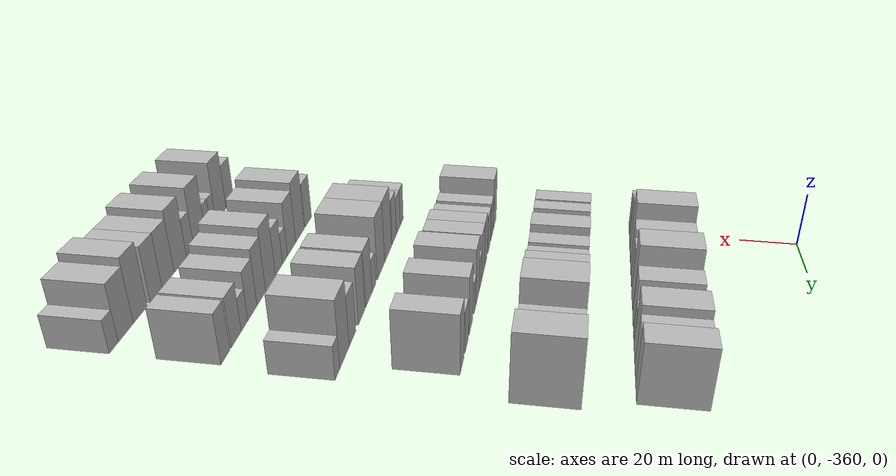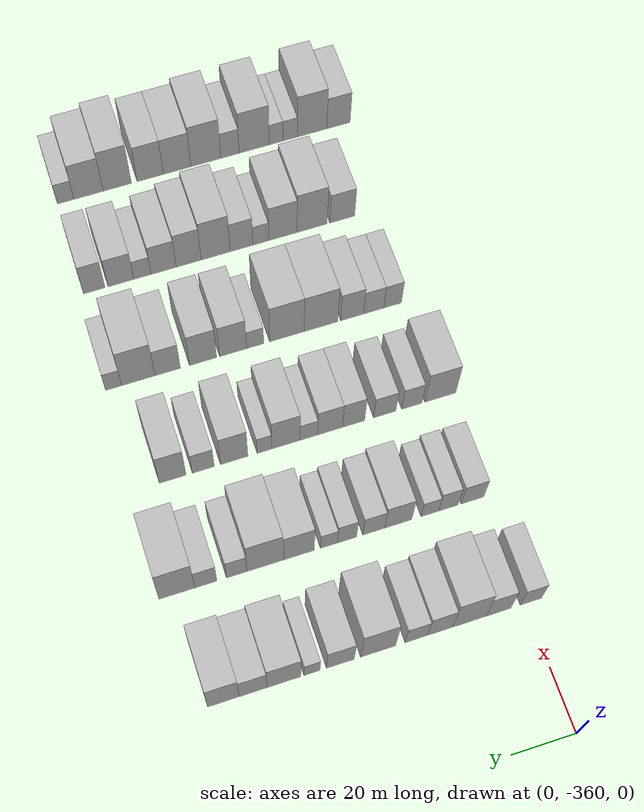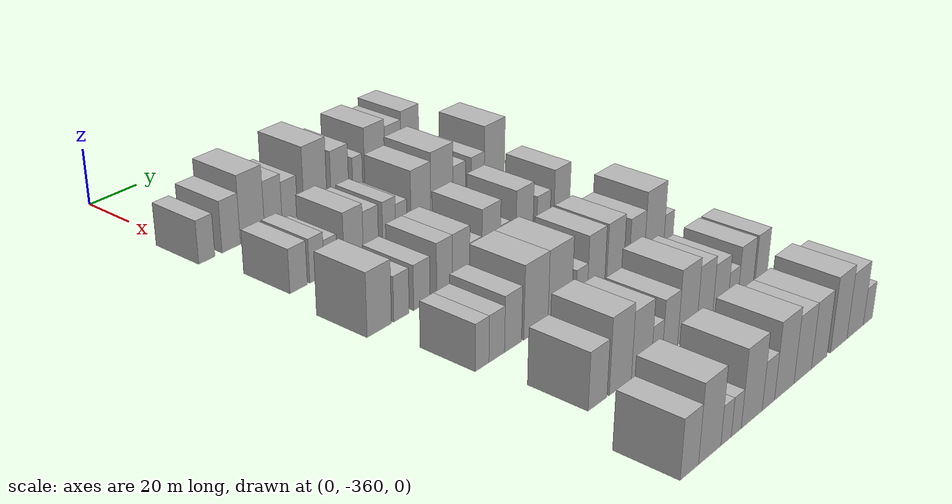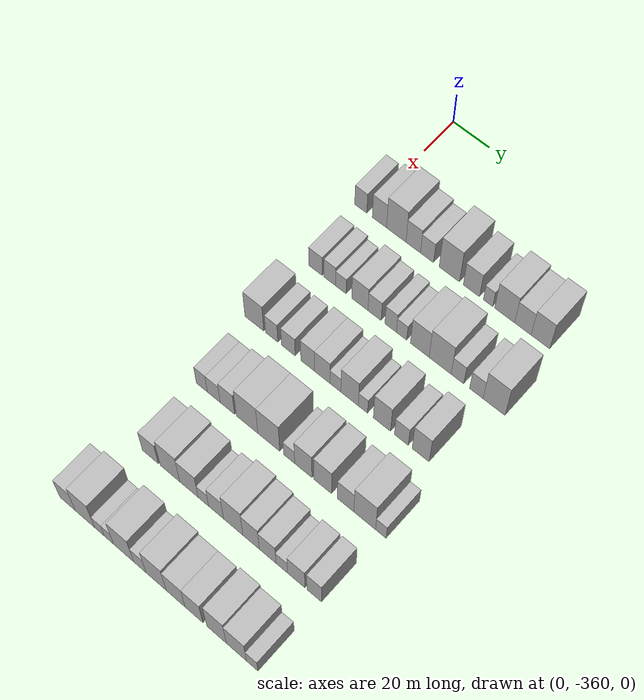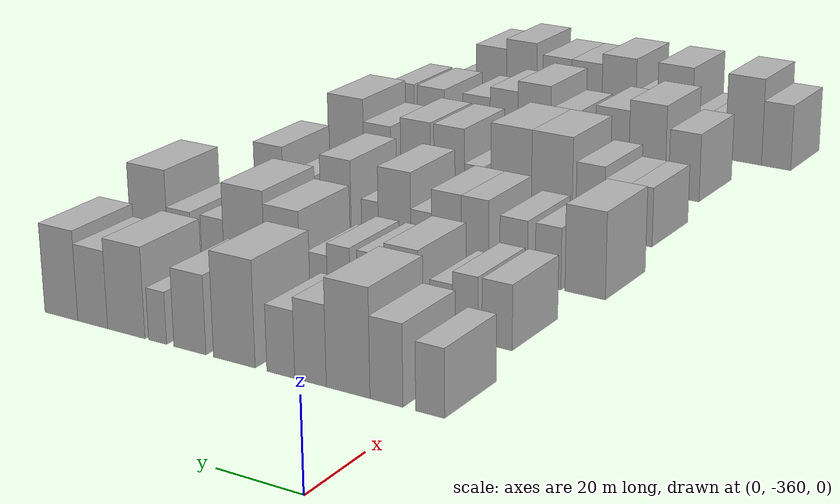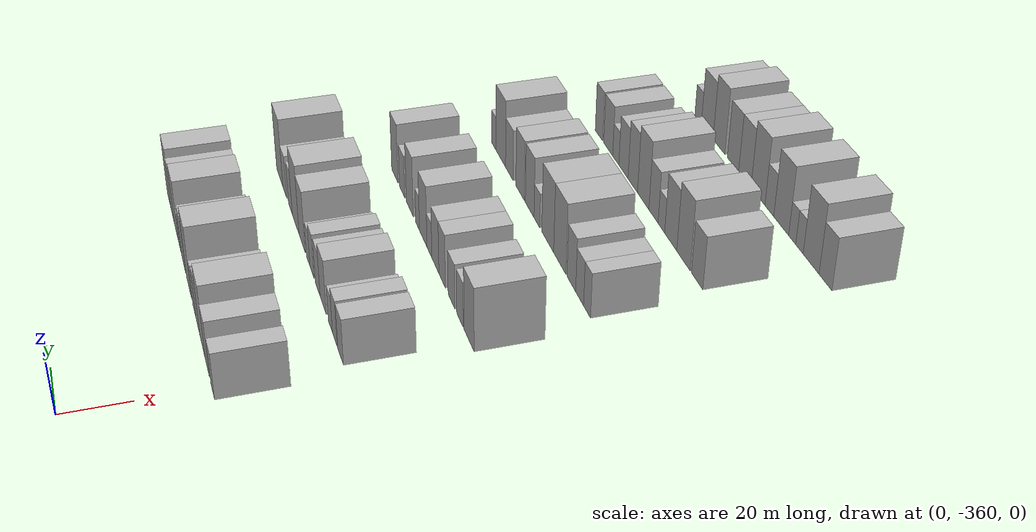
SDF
<sdf version="1.6">
 <world name="default">
  <model name="building_23">
   <static>1</static>
   <pose>50.0000 -361.8570 0 0.000000 0.000000 0.000000</pose>
   <link name="link">
    <pose>0 0 7.50 0 0 0</pose>
    <collision name="collision"><geometry><box><size>20.0000 6.7448 15.0000</size></box></geometry></collision>
    <visual name="visual">
     <cast_shadows>0</cast_shadows>
     <geometry><box><size>20.0000 6.7448 15.0000</size></box></geometry>
     <material>
      <script>
       <uri>model://HANNAS_wall/materials/scripts</uri>
       <uri>model://HANNAS_wall/materials/textures</uri>
       <name>vrc/HANNAS_wall</name>
      </script>
     </material>
    </visual>
   </link>
  </model>
  <model name="building_24">
   <static>1</static>
   <pose>50.0000 -351.5566 0 0.000000 0.000000 0.000000</pose>
   <link name="link">
    <pose>0 0 9.00 0 0 0</pose>
    <collision name="collision"><geometry><box><size>20.0000 7.8558 18.0000</size></box></geometry></collision>
    <visual name="visual">
     <cast_shadows>0</cast_shadows>
     <geometry><box><size>20.0000 7.8558 18.0000</size></box></geometry>
     <material>
      <script>
       <uri>model://HANNAS_wall/materials/scripts</uri>
       <uri>model://HANNAS_wall/materials/textures</uri>
       <name>vrc/HANNAS_wall</name>
      </script>
     </material>
    </visual>
   </link>
  </model>
  <model name="building_25">
   <static>1</static>
   <pose>50.0000 -342.3098 0 0.000000 0.000000 0.000000</pose>
   <link name="link">
    <pose>0 0 12.00 0 0 0</pose>
    <collision name="collision"><geometry><box><size>20.0000 10.6379 24.0000</size></box></geometry></collision>
    <visual name="visual">
     <cast_shadows>0</cast_shadows>
     <geometry><box><size>20.0000 10.6379 24.0000</size></box></geometry>
     <material>
      <script>
       <uri>model://HANNAS_wall/materials/scripts</uri>
       <uri>model://HANNAS_wall/materials/textures</uri>
       <name>vrc/HANNAS_wall</name>
      </script>
     </material>
    </visual>
   </link>
  </model>
  <model name="building_26">
   <static>1</static>
   <pose>50.0000 -333.0607 0 0.000000 0.000000 0.000000</pose>
   <link name="link">
    <pose>0 0 9.00 0 0 0</pose>
    <collision name="collision"><geometry><box><size>20.0000 7.8603 18.0000</size></box></geometry></collision>
    <visual name="visual">
     <cast_shadows>0</cast_shadows>
     <geometry><box><size>20.0000 7.8603 18.0000</size></box></geometry>
     <material>
      <script>
       <uri>model://HANNAS_wall/materials/scripts</uri>
       <uri>model://HANNAS_wall/materials/textures</uri>
       <name>vrc/HANNAS_wall</name>
      </script>
     </material>
    </visual>
   </link>
  </model>
  <model name="building_27">
   <static>1</static>
   <pose>50.0000 -325.6016 0 0.000000 0.000000 0.000000</pose>
   <link name="link">
    <pose>0 0 7.50 0 0 0</pose>
    <collision name="collision"><geometry><box><size>20.0000 7.0579 15.0000</size></box></geometry></collision>
    <visual name="visual">
     <cast_shadows>0</cast_shadows>
     <geometry><box><size>20.0000 7.0579 15.0000</size></box></geometry>
     <material>
      <script>
       <uri>model://HANNAS_wall/materials/scripts</uri>
       <uri>model://HANNAS_wall/materials/textures</uri>
       <name>vrc/HANNAS_wall</name>
      </script>
     </material>
    </visual>
   </link>
  </model>
  <model name="building_28">
   <static>1</static>
   <pose>50.0000 -313.6420 0 0.000000 0.000000 0.000000</pose>
   <link name="link">
    <pose>0 0 12.00 0 0 0</pose>
    <collision name="collision"><geometry><box><size>20.0000 10.8613 24.0000</size></box></geometry></collision>
    <visual name="visual">
     <cast_shadows>0</cast_shadows>
     <geometry><box><size>20.0000 10.8613 24.0000</size></box></geometry>
     <material>
      <script>
       <uri>model://HANNAS_wall/materials/scripts</uri>
       <uri>model://HANNAS_wall/materials/textures</uri>
       <name>vrc/HANNAS_wall</name>
      </script>
     </material>
    </visual>
   </link>
  </model>
  <model name="building_29">
   <static>1</static>
   <pose>50.0000 -301.9269 0 0.000000 0.000000 0.000000</pose>
   <link name="link">
    <pose>0 0 9.00 0 0 0</pose>
    <collision name="collision"><geometry><box><size>20.0000 8.5691 18.0000</size></box></geometry></collision>
    <visual name="visual">
     <cast_shadows>0</cast_shadows>
     <geometry><box><size>20.0000 8.5691 18.0000</size></box></geometry>
     <material>
      <script>
       <uri>model://HANNAS_wall/materials/scripts</uri>
       <uri>model://HANNAS_wall/materials/textures</uri>
       <name>vrc/HANNAS_wall</name>
      </script>
     </material>
    </visual>
   </link>
  </model>
  <model name="building_30">
   <static>1</static>
   <pose>50.0000 -293.1799 0 0.000000 0.000000 0.000000</pose>
   <link name="link">
    <pose>0 0 6.00 0 0 0</pose>
    <collision name="collision"><geometry><box><size>20.0000 4.9248 12.0000</size></box></geometry></collision>
    <visual name="visual">
     <cast_shadows>0</cast_shadows>
     <geometry><box><size>20.0000 4.9248 12.0000</size></box></geometry>
     <material>
      <script>
       <uri>model://HANNAS_wall/materials/scripts</uri>
       <uri>model://HANNAS_wall/materials/textures</uri>
       <name>vrc/HANNAS_wall</name>
      </script>
     </material>
    </visual>
   </link>
  </model>
  <model name="building_31">
   <static>1</static>
   <pose>50.0000 -284.5382 0 0.000000 0.000000 0.000000</pose>
   <link name="link">
    <pose>0 0 10.50 0 0 0</pose>
    <collision name="collision"><geometry><box><size>20.0000 10.3585 21.0000</size></box></geometry></collision>
    <visual name="visual">
     <cast_shadows>0</cast_shadows>
     <geometry><box><size>20.0000 10.3585 21.0000</size></box></geometry>
     <material>
      <script>
       <uri>model://HANNAS_wall/materials/scripts</uri>
       <uri>model://HANNAS_wall/materials/textures</uri>
       <name>vrc/HANNAS_wall</name>
      </script>
     </material>
    </visual>
   </link>
  </model>
  <model name="building_32">
   <static>1</static>
   <pose>50.0000 -275.1140 0 0.000000 0.000000 0.000000</pose>
   <link name="link">
    <pose>0 0 9.00 0 0 0</pose>
    <collision name="collision"><geometry><box><size>20.0000 8.4899 18.0000</size></box></geometry></collision>
    <visual name="visual">
     <cast_shadows>0</cast_shadows>
     <geometry><box><size>20.0000 8.4899 18.0000</size></box></geometry>
     <material>
      <script>
       <uri>model://HANNAS_wall/materials/scripts</uri>
       <uri>model://HANNAS_wall/materials/textures</uri>
       <name>vrc/HANNAS_wall</name>
      </script>
     </material>
    </visual>
   </link>
  </model>
  <model name="building_33">
   <static>1</static>
   <pose>50.0000 -266.1112 0 0.000000 0.000000 0.000000</pose>
   <link name="link">
    <pose>0 0 10.50 0 0 0</pose>
    <collision name="collision"><geometry><box><size>20.0000 9.5158 21.0000</size></box></geometry></collision>
    <visual name="visual">
     <cast_shadows>0</cast_shadows>
     <geometry><box><size>20.0000 9.5158 21.0000</size></box></geometry>
     <material>
      <script>
       <uri>model://HANNAS_wall/materials/scripts</uri>
       <uri>model://HANNAS_wall/materials/textures</uri>
       <name>vrc/HANNAS_wall</name>
      </script>
     </material>
    </visual>
   </link>
  </model>
  <model name="building_153">
   <static>1</static>
   <pose>85.0000 -356.6138 0 0.000000 0.000000 0.000000</pose>
   <link name="link">
    <pose>0 0 7.50 0 0 0</pose>
    <collision name="collision"><geometry><box><size>20.0000 7.4256 15.0000</size></box></geometry></collision>
    <visual name="visual">
     <cast_shadows>0</cast_shadows>
     <geometry><box><size>20.0000 7.4256 15.0000</size></box></geometry>
     <material>
      <script>
       <uri>model://HANNAS_wall/materials/scripts</uri>
       <uri>model://HANNAS_wall/materials/textures</uri>
       <name>vrc/HANNAS_wall</name>
      </script>
     </material>
    </visual>
   </link>
  </model>
  <model name="building_154">
   <static>1</static>
   <pose>85.0000 -348.7502 0 0.000000 0.000000 0.000000</pose>
   <link name="link">
    <pose>0 0 7.50 0 0 0</pose>
    <collision name="collision"><geometry><box><size>20.0000 6.3016 15.0000</size></box></geometry></collision>
    <visual name="visual">
     <cast_shadows>0</cast_shadows>
     <geometry><box><size>20.0000 6.3016 15.0000</size></box></geometry>
     <material>
      <script>
       <uri>model://HANNAS_wall/materials/scripts</uri>
       <uri>model://HANNAS_wall/materials/textures</uri>
       <name>vrc/HANNAS_wall</name>
      </script>
     </material>
    </visual>
   </link>
  </model>
  <model name="building_155">
   <static>1</static>
   <pose>85.0000 -342.7253 0 0.000000 0.000000 0.000000</pose>
   <link name="link">
    <pose>0 0 6.00 0 0 0</pose>
    <collision name="collision"><geometry><box><size>20.0000 5.7482 12.0000</size></box></geometry></collision>
    <visual name="visual">
     <cast_shadows>0</cast_shadows>
     <geometry><box><size>20.0000 5.7482 12.0000</size></box></geometry>
     <material>
      <script>
       <uri>model://HANNAS_wall/materials/scripts</uri>
       <uri>model://HANNAS_wall/materials/textures</uri>
       <name>vrc/HANNAS_wall</name>
      </script>
     </material>
    </visual>
   </link>
  </model>
  <model name="building_156">
   <static>1</static>
   <pose>85.0000 -332.4736 0 0.000000 0.000000 0.000000</pose>
   <link name="link">
    <pose>0 0 9.00 0 0 0</pose>
    <collision name="collision"><geometry><box><size>20.0000 8.7551 18.0000</size></box></geometry></collision>
    <visual name="visual">
     <cast_shadows>0</cast_shadows>
     <geometry><box><size>20.0000 8.7551 18.0000</size></box></geometry>
     <material>
      <script>
       <uri>model://HANNAS_wall/materials/scripts</uri>
       <uri>model://HANNAS_wall/materials/textures</uri>
       <name>vrc/HANNAS_wall</name>
      </script>
     </material>
    </visual>
   </link>
  </model>
  <model name="building_157">
   <static>1</static>
   <pose>85.0000 -324.5687 0 0.000000 0.000000 0.000000</pose>
   <link name="link">
    <pose>0 0 7.50 0 0 0</pose>
    <collision name="collision"><geometry><box><size>20.0000 7.0547 15.0000</size></box></geometry></collision>
    <visual name="visual">
     <cast_shadows>0</cast_shadows>
     <geometry><box><size>20.0000 7.0547 15.0000</size></box></geometry>
     <material>
      <script>
       <uri>model://HANNAS_wall/materials/scripts</uri>
       <uri>model://HANNAS_wall/materials/textures</uri>
       <name>vrc/HANNAS_wall</name>
      </script>
     </material>
    </visual>
   </link>
  </model>
  <model name="building_158">
   <static>1</static>
   <pose>85.0000 -315.9843 0 0.000000 0.000000 0.000000</pose>
   <link name="link">
    <pose>0 0 7.50 0 0 0</pose>
    <collision name="collision"><geometry><box><size>20.0000 6.1139 15.0000</size></box></geometry></collision>
    <visual name="visual">
     <cast_shadows>0</cast_shadows>
     <geometry><box><size>20.0000 6.1139 15.0000</size></box></geometry>
     <material>
      <script>
       <uri>model://HANNAS_wall/materials/scripts</uri>
       <uri>model://HANNAS_wall/materials/textures</uri>
       <name>vrc/HANNAS_wall</name>
      </script>
     </material>
    </visual>
   </link>
  </model>
  <model name="building_159">
   <static>1</static>
   <pose>85.0000 -310.2199 0 0.000000 0.000000 0.000000</pose>
   <link name="link">
    <pose>0 0 6.00 0 0 0</pose>
    <collision name="collision"><geometry><box><size>20.0000 5.4149 12.0000</size></box></geometry></collision>
    <visual name="visual">
     <cast_shadows>0</cast_shadows>
     <geometry><box><size>20.0000 5.4149 12.0000</size></box></geometry>
     <material>
      <script>
       <uri>model://HANNAS_wall/materials/scripts</uri>
       <uri>model://HANNAS_wall/materials/textures</uri>
       <name>vrc/HANNAS_wall</name>
      </script>
     </material>
    </visual>
   </link>
  </model>
  <model name="building_160">
   <static>1</static>
   <pose>85.0000 -300.6494 0 0.000000 0.000000 0.000000</pose>
   <link name="link">
    <pose>0 0 10.50 0 0 0</pose>
    <collision name="collision"><geometry><box><size>20.0000 9.7261 21.0000</size></box></geometry></collision>
    <visual name="visual">
     <cast_shadows>0</cast_shadows>
     <geometry><box><size>20.0000 9.7261 21.0000</size></box></geometry>
     <material>
      <script>
       <uri>model://HANNAS_wall/materials/scripts</uri>
       <uri>model://HANNAS_wall/materials/textures</uri>
       <name>vrc/HANNAS_wall</name>
      </script>
     </material>
    </visual>
   </link>
  </model>
  <model name="building_161">
   <static>1</static>
   <pose>85.0000 -290.0320 0 0.000000 0.000000 0.000000</pose>
   <link name="link">
    <pose>0 0 12.00 0 0 0</pose>
    <collision name="collision"><geometry><box><size>20.0000 11.5087 24.0000</size></box></geometry></collision>
    <visual name="visual">
     <cast_shadows>0</cast_shadows>
     <geometry><box><size>20.0000 11.5087 24.0000</size></box></geometry>
     <material>
      <script>
       <uri>model://HANNAS_wall/materials/scripts</uri>
       <uri>model://HANNAS_wall/materials/textures</uri>
       <name>vrc/HANNAS_wall</name>
      </script>
     </material>
    </visual>
   </link>
  </model>
  <model name="building_162">
   <static>1</static>
   <pose>85.0000 -281.0514 0 0.000000 0.000000 0.000000</pose>
   <link name="link">
    <pose>0 0 7.50 0 0 0</pose>
    <collision name="collision"><geometry><box><size>20.0000 6.4526 15.0000</size></box></geometry></collision>
    <visual name="visual">
     <cast_shadows>0</cast_shadows>
     <geometry><box><size>20.0000 6.4526 15.0000</size></box></geometry>
     <material>
      <script>
       <uri>model://HANNAS_wall/materials/scripts</uri>
       <uri>model://HANNAS_wall/materials/textures</uri>
       <name>vrc/HANNAS_wall</name>
      </script>
     </material>
    </visual>
   </link>
  </model>
  <model name="building_163">
   <static>1</static>
   <pose>85.0000 -271.3670 0 0.000000 0.000000 0.000000</pose>
   <link name="link">
    <pose>0 0 7.50 0 0 0</pose>
    <collision name="collision"><geometry><box><size>20.0000 6.9162 15.0000</size></box></geometry></collision>
    <visual name="visual">
     <cast_shadows>0</cast_shadows>
     <geometry><box><size>20.0000 6.9162 15.0000</size></box></geometry>
     <material>
      <script>
       <uri>model://HANNAS_wall/materials/scripts</uri>
       <uri>model://HANNAS_wall/materials/textures</uri>
       <name>vrc/HANNAS_wall</name>
      </script>
     </material>
    </visual>
   </link>
  </model>
  <model name="building_164">
   <static>1</static>
   <pose>85.0000 -262.3561 0 0.000000 0.000000 0.000000</pose>
   <link name="link">
    <pose>0 0 12.00 0 0 0</pose>
    <collision name="collision"><geometry><box><size>20.0000 11.1057 24.0000</size></box></geometry></collision>
    <visual name="visual">
     <cast_shadows>0</cast_shadows>
     <geometry><box><size>20.0000 11.1057 24.0000</size></box></geometry>
     <material>
      <script>
       <uri>model://HANNAS_wall/materials/scripts</uri>
       <uri>model://HANNAS_wall/materials/textures</uri>
       <name>vrc/HANNAS_wall</name>
      </script>
     </material>
    </visual>
   </link>
  </model>
  <model name="building_280">
   <static>1</static>
   <pose>120.0000 -359.0957 0 0.000000 0.000000 0.000000</pose>
   <link name="link">
    <pose>0 0 10.50 0 0 0</pose>
    <collision name="collision"><geometry><box><size>20.0000 10.3449 21.0000</size></box></geometry></collision>
    <visual name="visual">
     <cast_shadows>0</cast_shadows>
     <geometry><box><size>20.0000 10.3449 21.0000</size></box></geometry>
     <material>
      <script>
       <uri>model://HANNAS_wall/materials/scripts</uri>
       <uri>model://HANNAS_wall/materials/textures</uri>
       <name>vrc/HANNAS_wall</name>
      </script>
     </material>
    </visual>
   </link>
  </model>
  <model name="building_281">
   <static>1</static>
   <pose>120.0000 -349.5633 0 0.000000 0.000000 0.000000</pose>
   <link name="link">
    <pose>0 0 7.50 0 0 0</pose>
    <collision name="collision"><geometry><box><size>20.0000 6.7200 15.0000</size></box></geometry></collision>
    <visual name="visual">
     <cast_shadows>0</cast_shadows>
     <geometry><box><size>20.0000 6.7200 15.0000</size></box></geometry>
     <material>
      <script>
       <uri>model://HANNAS_wall/materials/scripts</uri>
       <uri>model://HANNAS_wall/materials/textures</uri>
       <name>vrc/HANNAS_wall</name>
      </script>
     </material>
    </visual>
   </link>
  </model>
  <model name="building_282">
   <static>1</static>
   <pose>120.0000 -340.5089 0 0.000000 0.000000 0.000000</pose>
   <link name="link">
    <pose>0 0 7.50 0 0 0</pose>
    <collision name="collision"><geometry><box><size>20.0000 7.3887 15.0000</size></box></geometry></collision>
    <visual name="visual">
     <cast_shadows>0</cast_shadows>
     <geometry><box><size>20.0000 7.3887 15.0000</size></box></geometry>
     <material>
      <script>
       <uri>model://HANNAS_wall/materials/scripts</uri>
       <uri>model://HANNAS_wall/materials/textures</uri>
       <name>vrc/HANNAS_wall</name>
      </script>
     </material>
    </visual>
   </link>
  </model>
  <model name="building_283">
   <static>1</static>
   <pose>120.0000 -330.1586 0 0.000000 0.000000 0.000000</pose>
   <link name="link">
    <pose>0 0 9.00 0 0 0</pose>
    <collision name="collision"><geometry><box><size>20.0000 7.3119 18.0000</size></box></geometry></collision>
    <visual name="visual">
     <cast_shadows>0</cast_shadows>
     <geometry><box><size>20.0000 7.3119 18.0000</size></box></geometry>
     <material>
      <script>
       <uri>model://HANNAS_wall/materials/scripts</uri>
       <uri>model://HANNAS_wall/materials/textures</uri>
       <name>vrc/HANNAS_wall</name>
      </script>
     </material>
    </visual>
   </link>
  </model>
  <model name="building_284">
   <static>1</static>
   <pose>120.0000 -322.3991 0 0.000000 0.000000 0.000000</pose>
   <link name="link">
    <pose>0 0 9.00 0 0 0</pose>
    <collision name="collision"><geometry><box><size>20.0000 8.2072 18.0000</size></box></geometry></collision>
    <visual name="visual">
     <cast_shadows>0</cast_shadows>
     <geometry><box><size>20.0000 8.2072 18.0000</size></box></geometry>
     <material>
      <script>
       <uri>model://HANNAS_wall/materials/scripts</uri>
       <uri>model://HANNAS_wall/materials/textures</uri>
       <name>vrc/HANNAS_wall</name>
      </script>
     </material>
    </visual>
   </link>
  </model>
  <model name="building_285">
   <static>1</static>
   <pose>120.0000 -315.3984 0 0.000000 0.000000 0.000000</pose>
   <link name="link">
    <pose>0 0 6.00 0 0 0</pose>
    <collision name="collision"><geometry><box><size>20.0000 5.7943 12.0000</size></box></geometry></collision>
    <visual name="visual">
     <cast_shadows>0</cast_shadows>
     <geometry><box><size>20.0000 5.7943 12.0000</size></box></geometry>
     <material>
      <script>
       <uri>model://HANNAS_wall/materials/scripts</uri>
       <uri>model://HANNAS_wall/materials/textures</uri>
       <name>vrc/HANNAS_wall</name>
      </script>
     </material>
    </visual>
   </link>
  </model>
  <model name="building_286">
   <static>1</static>
   <pose>120.0000 -307.9123 0 0.000000 0.000000 0.000000</pose>
   <link name="link">
    <pose>0 0 10.50 0 0 0</pose>
    <collision name="collision"><geometry><box><size>20.0000 9.1779 21.0000</size></box></geometry></collision>
    <visual name="visual">
     <cast_shadows>0</cast_shadows>
     <geometry><box><size>20.0000 9.1779 21.0000</size></box></geometry>
     <material>
      <script>
       <uri>model://HANNAS_wall/materials/scripts</uri>
       <uri>model://HANNAS_wall/materials/textures</uri>
       <name>vrc/HANNAS_wall</name>
      </script>
     </material>
    </visual>
   </link>
  </model>
  <model name="building_287">
   <static>1</static>
   <pose>120.0000 -300.9202 0 0.000000 0.000000 0.000000</pose>
   <link name="link">
    <pose>0 0 6.00 0 0 0</pose>
    <collision name="collision"><geometry><box><size>20.0000 4.8064 12.0000</size></box></geometry></collision>
    <visual name="visual">
     <cast_shadows>0</cast_shadows>
     <geometry><box><size>20.0000 4.8064 12.0000</size></box></geometry>
     <material>
      <script>
       <uri>model://HANNAS_wall/materials/scripts</uri>
       <uri>model://HANNAS_wall/materials/textures</uri>
       <name>vrc/HANNAS_wall</name>
      </script>
     </material>
    </visual>
   </link>
  </model>
  <model name="building_288">
   <static>1</static>
   <pose>120.0000 -291.0784 0 0.000000 0.000000 0.000000</pose>
   <link name="link">
    <pose>0 0 10.50 0 0 0</pose>
    <collision name="collision"><geometry><box><size>20.0000 8.8771 21.0000</size></box></geometry></collision>
    <visual name="visual">
     <cast_shadows>0</cast_shadows>
     <geometry><box><size>20.0000 8.8771 21.0000</size></box></geometry>
     <material>
      <script>
       <uri>model://HANNAS_wall/materials/scripts</uri>
       <uri>model://HANNAS_wall/materials/textures</uri>
       <name>vrc/HANNAS_wall</name>
      </script>
     </material>
    </visual>
   </link>
  </model>
  <model name="building_289">
   <static>1</static>
   <pose>120.0000 -281.1049 0 0.000000 0.000000 0.000000</pose>
   <link name="link">
    <pose>0 0 7.50 0 0 0</pose>
    <collision name="collision"><geometry><box><size>20.0000 7.0700 15.0000</size></box></geometry></collision>
    <visual name="visual">
     <cast_shadows>0</cast_shadows>
     <geometry><box><size>20.0000 7.0700 15.0000</size></box></geometry>
     <material>
      <script>
       <uri>model://HANNAS_wall/materials/scripts</uri>
       <uri>model://HANNAS_wall/materials/textures</uri>
       <name>vrc/HANNAS_wall</name>
      </script>
     </material>
    </visual>
   </link>
  </model>
  <model name="building_290">
   <static>1</static>
   <pose>120.0000 -271.2686 0 0.000000 0.000000 0.000000</pose>
   <link name="link">
    <pose>0 0 10.50 0 0 0</pose>
    <collision name="collision"><geometry><box><size>20.0000 8.6024 21.0000</size></box></geometry></collision>
    <visual name="visual">
     <cast_shadows>0</cast_shadows>
     <geometry><box><size>20.0000 8.6024 21.0000</size></box></geometry>
     <material>
      <script>
       <uri>model://HANNAS_wall/materials/scripts</uri>
       <uri>model://HANNAS_wall/materials/textures</uri>
       <name>vrc/HANNAS_wall</name>
      </script>
     </material>
    </visual>
   </link>
  </model>
  <model name="building_407">
   <static>1</static>
   <pose>155.0000 -355.6135 0 0.000000 0.000000 0.000000</pose>
   <link name="link">
    <pose>0 0 7.50 0 0 0</pose>
    <collision name="collision"><geometry><box><size>20.0000 6.0016 15.0000</size></box></geometry></collision>
    <visual name="visual">
     <cast_shadows>0</cast_shadows>
     <geometry><box><size>20.0000 6.0016 15.0000</size></box></geometry>
     <material>
      <script>
       <uri>model://HANNAS_wall/materials/scripts</uri>
       <uri>model://HANNAS_wall/materials/textures</uri>
       <name>vrc/HANNAS_wall</name>
      </script>
     </material>
    </visual>
   </link>
  </model>
  <model name="building_408">
   <static>1</static>
   <pose>155.0000 -349.1348 0 0.000000 0.000000 0.000000</pose>
   <link name="link">
    <pose>0 0 7.50 0 0 0</pose>
    <collision name="collision"><geometry><box><size>20.0000 6.9558 15.0000</size></box></geometry></collision>
    <visual name="visual">
     <cast_shadows>0</cast_shadows>
     <geometry><box><size>20.0000 6.9558 15.0000</size></box></geometry>
     <material>
      <script>
       <uri>model://HANNAS_wall/materials/scripts</uri>
       <uri>model://HANNAS_wall/materials/textures</uri>
       <name>vrc/HANNAS_wall</name>
      </script>
     </material>
    </visual>
   </link>
  </model>
  <model name="building_409">
   <static>1</static>
   <pose>155.0000 -341.7537 0 0.000000 0.000000 0.000000</pose>
   <link name="link">
    <pose>0 0 9.00 0 0 0</pose>
    <collision name="collision"><geometry><box><size>20.0000 7.8066 18.0000</size></box></geometry></collision>
    <visual name="visual">
     <cast_shadows>0</cast_shadows>
     <geometry><box><size>20.0000 7.8066 18.0000</size></box></geometry>
     <material>
      <script>
       <uri>model://HANNAS_wall/materials/scripts</uri>
       <uri>model://HANNAS_wall/materials/textures</uri>
       <name>vrc/HANNAS_wall</name>
      </script>
     </material>
    </visual>
   </link>
  </model>
  <model name="building_410">
   <static>1</static>
   <pose>155.0000 -331.1310 0 0.000000 0.000000 0.000000</pose>
   <link name="link">
    <pose>0 0 12.00 0 0 0</pose>
    <collision name="collision"><geometry><box><size>20.0000 11.4388 24.0000</size></box></geometry></collision>
    <visual name="visual">
     <cast_shadows>0</cast_shadows>
     <geometry><box><size>20.0000 11.4388 24.0000</size></box></geometry>
     <material>
      <script>
       <uri>model://HANNAS_wall/materials/scripts</uri>
       <uri>model://HANNAS_wall/materials/textures</uri>
       <name>vrc/HANNAS_wall</name>
      </script>
     </material>
    </visual>
   </link>
  </model>
  <model name="building_411">
   <static>1</static>
   <pose>155.0000 -319.6131 0 0.000000 0.000000 0.000000</pose>
   <link name="link">
    <pose>0 0 12.00 0 0 0</pose>
    <collision name="collision"><geometry><box><size>20.0000 11.5971 24.0000</size></box></geometry></collision>
    <visual name="visual">
     <cast_shadows>0</cast_shadows>
     <geometry><box><size>20.0000 11.5971 24.0000</size></box></geometry>
     <material>
      <script>
       <uri>model://HANNAS_wall/materials/scripts</uri>
       <uri>model://HANNAS_wall/materials/textures</uri>
       <name>vrc/HANNAS_wall</name>
      </script>
     </material>
    </visual>
   </link>
  </model>
  <model name="building_412">
   <static>1</static>
   <pose>155.0000 -308.9166 0 0.000000 0.000000 0.000000</pose>
   <link name="link">
    <pose>0 0 6.00 0 0 0</pose>
    <collision name="collision"><geometry><box><size>20.0000 5.7958 12.0000</size></box></geometry></collision>
    <visual name="visual">
     <cast_shadows>0</cast_shadows>
     <geometry><box><size>20.0000 5.7958 12.0000</size></box></geometry>
     <material>
      <script>
       <uri>model://HANNAS_wall/materials/scripts</uri>
       <uri>model://HANNAS_wall/materials/textures</uri>
       <name>vrc/HANNAS_wall</name>
      </script>
     </material>
    </visual>
   </link>
  </model>
  <model name="building_413">
   <static>1</static>
   <pose>155.0000 -301.5447 0 0.000000 0.000000 0.000000</pose>
   <link name="link">
    <pose>0 0 10.50 0 0 0</pose>
    <collision name="collision"><geometry><box><size>20.0000 8.9481 21.0000</size></box></geometry></collision>
    <visual name="visual">
     <cast_shadows>0</cast_shadows>
     <geometry><box><size>20.0000 8.9481 21.0000</size></box></geometry>
     <material>
      <script>
       <uri>model://HANNAS_wall/materials/scripts</uri>
       <uri>model://HANNAS_wall/materials/textures</uri>
       <name>vrc/HANNAS_wall</name>
      </script>
     </material>
    </visual>
   </link>
  </model>
  <model name="building_414">
   <static>1</static>
   <pose>155.0000 -291.5511 0 0.000000 0.000000 0.000000</pose>
   <link name="link">
    <pose>0 0 10.50 0 0 0</pose>
    <collision name="collision"><geometry><box><size>20.0000 9.0392 21.0000</size></box></geometry></collision>
    <visual name="visual">
     <cast_shadows>0</cast_shadows>
     <geometry><box><size>20.0000 9.0392 21.0000</size></box></geometry>
     <material>
      <script>
       <uri>model://HANNAS_wall/materials/scripts</uri>
       <uri>model://HANNAS_wall/materials/textures</uri>
       <name>vrc/HANNAS_wall</name>
      </script>
     </material>
    </visual>
   </link>
  </model>
  <model name="building_415">
   <static>1</static>
   <pose>155.0000 -279.8428 0 0.000000 0.000000 0.000000</pose>
   <link name="link">
    <pose>0 0 9.00 0 0 0</pose>
    <collision name="collision"><geometry><box><size>20.0000 8.3774 18.0000</size></box></geometry></collision>
    <visual name="visual">
     <cast_shadows>0</cast_shadows>
     <geometry><box><size>20.0000 8.3774 18.0000</size></box></geometry>
     <material>
      <script>
       <uri>model://HANNAS_wall/materials/scripts</uri>
       <uri>model://HANNAS_wall/materials/textures</uri>
       <name>vrc/HANNAS_wall</name>
      </script>
     </material>
    </visual>
   </link>
  </model>
  <model name="building_416">
   <static>1</static>
   <pose>155.0000 -270.1602 0 0.000000 0.000000 0.000000</pose>
   <link name="link">
    <pose>0 0 12.00 0 0 0</pose>
    <collision name="collision"><geometry><box><size>20.0000 10.9877 24.0000</size></box></geometry></collision>
    <visual name="visual">
     <cast_shadows>0</cast_shadows>
     <geometry><box><size>20.0000 10.9877 24.0000</size></box></geometry>
     <material>
      <script>
       <uri>model://HANNAS_wall/materials/scripts</uri>
       <uri>model://HANNAS_wall/materials/textures</uri>
       <name>vrc/HANNAS_wall</name>
      </script>
     </material>
    </visual>
   </link>
  </model>
  <model name="building_417">
   <static>1</static>
   <pose>155.0000 -262.0374 0 0.000000 0.000000 0.000000</pose>
   <link name="link">
    <pose>0 0 6.00 0 0 0</pose>
    <collision name="collision"><geometry><box><size>20.0000 5.2578 12.0000</size></box></geometry></collision>
    <visual name="visual">
     <cast_shadows>0</cast_shadows>
     <geometry><box><size>20.0000 5.2578 12.0000</size></box></geometry>
     <material>
      <script>
       <uri>model://HANNAS_wall/materials/scripts</uri>
       <uri>model://HANNAS_wall/materials/textures</uri>
       <name>vrc/HANNAS_wall</name>
      </script>
     </material>
    </visual>
   </link>
  </model>
  <model name="building_527">
   <static>1</static>
   <pose>190.0000 -350.3416 0 0.000000 0.000000 0.000000</pose>
   <link name="link">
    <pose>0 0 9.00 0 0 0</pose>
    <collision name="collision"><geometry><box><size>20.0000 8.6592 18.0000</size></box></geometry></collision>
    <visual name="visual">
     <cast_shadows>0</cast_shadows>
     <geometry><box><size>20.0000 8.6592 18.0000</size></box></geometry>
     <material>
      <script>
       <uri>model://HANNAS_wall/materials/scripts</uri>
       <uri>model://HANNAS_wall/materials/textures</uri>
       <name>vrc/HANNAS_wall</name>
      </script>
     </material>
    </visual>
   </link>
  </model>
  <model name="building_528">
   <static>1</static>
   <pose>190.0000 -339.7609 0 0.000000 0.000000 0.000000</pose>
   <link name="link">
    <pose>0 0 12.00 0 0 0</pose>
    <collision name="collision"><geometry><box><size>20.0000 10.5021 24.0000</size></box></geometry></collision>
    <visual name="visual">
     <cast_shadows>0</cast_shadows>
     <geometry><box><size>20.0000 10.5021 24.0000</size></box></geometry>
     <material>
      <script>
       <uri>model://HANNAS_wall/materials/scripts</uri>
       <uri>model://HANNAS_wall/materials/textures</uri>
       <name>vrc/HANNAS_wall</name>
      </script>
     </material>
    </visual>
   </link>
  </model>
  <model name="building_529">
   <static>1</static>
   <pose>190.0000 -329.6107 0 0.000000 0.000000 0.000000</pose>
   <link name="link">
    <pose>0 0 10.50 0 0 0</pose>
    <collision name="collision"><geometry><box><size>20.0000 9.7982 21.0000</size></box></geometry></collision>
    <visual name="visual">
     <cast_shadows>0</cast_shadows>
     <geometry><box><size>20.0000 9.7982 21.0000</size></box></geometry>
     <material>
      <script>
       <uri>model://HANNAS_wall/materials/scripts</uri>
       <uri>model://HANNAS_wall/materials/textures</uri>
       <name>vrc/HANNAS_wall</name>
      </script>
     </material>
    </visual>
   </link>
  </model>
  <model name="building_530">
   <static>1</static>
   <pose>190.0000 -321.9656 0 0.000000 0.000000 0.000000</pose>
   <link name="link">
    <pose>0 0 6.00 0 0 0</pose>
    <collision name="collision"><geometry><box><size>20.0000 5.4921 12.0000</size></box></geometry></collision>
    <visual name="visual">
     <cast_shadows>0</cast_shadows>
     <geometry><box><size>20.0000 5.4921 12.0000</size></box></geometry>
     <material>
      <script>
       <uri>model://HANNAS_wall/materials/scripts</uri>
       <uri>model://HANNAS_wall/materials/textures</uri>
       <name>vrc/HANNAS_wall</name>
      </script>
     </material>
    </visual>
   </link>
  </model>
  <model name="building_531">
   <static>1</static>
   <pose>190.0000 -315.3040 0 0.000000 0.000000 0.000000</pose>
   <link name="link">
    <pose>0 0 9.00 0 0 0</pose>
    <collision name="collision"><geometry><box><size>20.0000 7.8311 18.0000</size></box></geometry></collision>
    <visual name="visual">
     <cast_shadows>0</cast_shadows>
     <geometry><box><size>20.0000 7.8311 18.0000</size></box></geometry>
     <material>
      <script>
       <uri>model://HANNAS_wall/materials/scripts</uri>
       <uri>model://HANNAS_wall/materials/textures</uri>
       <name>vrc/HANNAS_wall</name>
      </script>
     </material>
    </visual>
   </link>
  </model>
  <model name="building_532">
   <static>1</static>
   <pose>190.0000 -306.3988 0 0.000000 0.000000 0.000000</pose>
   <link name="link">
    <pose>0 0 12.00 0 0 0</pose>
    <collision name="collision"><geometry><box><size>20.0000 9.9792 24.0000</size></box></geometry></collision>
    <visual name="visual">
     <cast_shadows>0</cast_shadows>
     <geometry><box><size>20.0000 9.9792 24.0000</size></box></geometry>
     <material>
      <script>
       <uri>model://HANNAS_wall/materials/scripts</uri>
       <uri>model://HANNAS_wall/materials/textures</uri>
       <name>vrc/HANNAS_wall</name>
      </script>
     </material>
    </visual>
   </link>
  </model>
  <model name="building_533">
   <static>1</static>
   <pose>190.0000 -297.1466 0 0.000000 0.000000 0.000000</pose>
   <link name="link">
    <pose>0 0 10.50 0 0 0</pose>
    <collision name="collision"><geometry><box><size>20.0000 8.5253 21.0000</size></box></geometry></collision>
    <visual name="visual">
     <cast_shadows>0</cast_shadows>
     <geometry><box><size>20.0000 8.5253 21.0000</size></box></geometry>
     <material>
      <script>
       <uri>model://HANNAS_wall/materials/scripts</uri>
       <uri>model://HANNAS_wall/materials/textures</uri>
       <name>vrc/HANNAS_wall</name>
      </script>
     </material>
    </visual>
   </link>
  </model>
  <model name="building_534">
   <static>1</static>
   <pose>190.0000 -288.6272 0 0.000000 0.000000 0.000000</pose>
   <link name="link">
    <pose>0 0 9.00 0 0 0</pose>
    <collision name="collision"><geometry><box><size>20.0000 8.5135 18.0000</size></box></geometry></collision>
    <visual name="visual">
     <cast_shadows>0</cast_shadows>
     <geometry><box><size>20.0000 8.5135 18.0000</size></box></geometry>
     <material>
      <script>
       <uri>model://HANNAS_wall/materials/scripts</uri>
       <uri>model://HANNAS_wall/materials/textures</uri>
       <name>vrc/HANNAS_wall</name>
      </script>
     </material>
    </visual>
   </link>
  </model>
  <model name="building_535">
   <static>1</static>
   <pose>190.0000 -281.4367 0 0.000000 0.000000 0.000000</pose>
   <link name="link">
    <pose>0 0 6.00 0 0 0</pose>
    <collision name="collision"><geometry><box><size>20.0000 5.8675 12.0000</size></box></geometry></collision>
    <visual name="visual">
     <cast_shadows>0</cast_shadows>
     <geometry><box><size>20.0000 5.8675 12.0000</size></box></geometry>
     <material>
      <script>
       <uri>model://HANNAS_wall/materials/scripts</uri>
       <uri>model://HANNAS_wall/materials/textures</uri>
       <name>vrc/HANNAS_wall</name>
      </script>
     </material>
    </visual>
   </link>
  </model>
  <model name="building_536">
   <static>1</static>
   <pose>190.0000 -274.1487 0 0.000000 0.000000 0.000000</pose>
   <link name="link">
    <pose>0 0 9.00 0 0 0</pose>
    <collision name="collision"><geometry><box><size>20.0000 8.7084 18.0000</size></box></geometry></collision>
    <visual name="visual">
     <cast_shadows>0</cast_shadows>
     <geometry><box><size>20.0000 8.7084 18.0000</size></box></geometry>
     <material>
      <script>
       <uri>model://HANNAS_wall/materials/scripts</uri>
       <uri>model://HANNAS_wall/materials/textures</uri>
       <name>vrc/HANNAS_wall</name>
      </script>
     </material>
    </visual>
   </link>
  </model>
  <model name="building_537">
   <static>1</static>
   <pose>190.0000 -265.1578 0 0.000000 0.000000 0.000000</pose>
   <link name="link">
    <pose>0 0 9.00 0 0 0</pose>
    <collision name="collision"><geometry><box><size>20.0000 7.2734 18.0000</size></box></geometry></collision>
    <visual name="visual">
     <cast_shadows>0</cast_shadows>
     <geometry><box><size>20.0000 7.2734 18.0000</size></box></geometry>
     <material>
      <script>
       <uri>model://HANNAS_wall/materials/scripts</uri>
       <uri>model://HANNAS_wall/materials/textures</uri>
       <name>vrc/HANNAS_wall</name>
      </script>
     </material>
    </visual>
   </link>
  </model>
  <model name="building_653">
   <static>1</static>
   <pose>225.0000 -360.9218 0 0.000000 0.000000 0.000000</pose>
   <link name="link">
    <pose>0 0 9.00 0 0 0</pose>
    <collision name="collision"><geometry><box><size>20.0000 8.4073 18.0000</size></box></geometry></collision>
    <visual name="visual">
     <cast_shadows>0</cast_shadows>
     <geometry><box><size>20.0000 8.4073 18.0000</size></box></geometry>
     <material>
      <script>
       <uri>model://HANNAS_wall/materials/scripts</uri>
       <uri>model://HANNAS_wall/materials/textures</uri>
       <name>vrc/HANNAS_wall</name>
      </script>
     </material>
    </visual>
   </link>
  </model>
  <model name="building_654">
   <static>1</static>
   <pose>225.0000 -351.4040 0 0.000000 0.000000 0.000000</pose>
   <link name="link">
    <pose>0 0 12.00 0 0 0</pose>
    <collision name="collision"><geometry><box><size>20.0000 10.6283 24.0000</size></box></geometry></collision>
    <visual name="visual">
     <cast_shadows>0</cast_shadows>
     <geometry><box><size>20.0000 10.6283 24.0000</size></box></geometry>
     <material>
      <script>
       <uri>model://HANNAS_wall/materials/scripts</uri>
       <uri>model://HANNAS_wall/materials/textures</uri>
       <name>vrc/HANNAS_wall</name>
      </script>
     </material>
    </visual>
   </link>
  </model>
  <model name="building_655">
   <static>1</static>
   <pose>225.0000 -343.5354 0 0.000000 0.000000 0.000000</pose>
   <link name="link">
    <pose>0 0 6.00 0 0 0</pose>
    <collision name="collision"><geometry><box><size>20.0000 5.1090 12.0000</size></box></geometry></collision>
    <visual name="visual">
     <cast_shadows>0</cast_shadows>
     <geometry><box><size>20.0000 5.1090 12.0000</size></box></geometry>
     <material>
      <script>
       <uri>model://HANNAS_wall/materials/scripts</uri>
       <uri>model://HANNAS_wall/materials/textures</uri>
       <name>vrc/HANNAS_wall</name>
      </script>
     </material>
    </visual>
   </link>
  </model>
  <model name="building_656">
   <static>1</static>
   <pose>225.0000 -338.5101 0 0.000000 0.000000 0.000000</pose>
   <link name="link">
    <pose>0 0 6.00 0 0 0</pose>
    <collision name="collision"><geometry><box><size>20.0000 4.9415 12.0000</size></box></geometry></collision>
    <visual name="visual">
     <cast_shadows>0</cast_shadows>
     <geometry><box><size>20.0000 4.9415 12.0000</size></box></geometry>
     <material>
      <script>
       <uri>model://HANNAS_wall/materials/scripts</uri>
       <uri>model://HANNAS_wall/materials/textures</uri>
       <name>vrc/HANNAS_wall</name>
      </script>
     </material>
    </visual>
   </link>
  </model>
  <model name="building_657">
   <static>1</static>
   <pose>225.0000 -330.7060 0 0.000000 0.000000 0.000000</pose>
   <link name="link">
    <pose>0 0 12.00 0 0 0</pose>
    <collision name="collision"><geometry><box><size>20.0000 10.6668 24.0000</size></box></geometry></collision>
    <visual name="visual">
     <cast_shadows>0</cast_shadows>
     <geometry><box><size>20.0000 10.6668 24.0000</size></box></geometry>
     <material>
      <script>
       <uri>model://HANNAS_wall/materials/scripts</uri>
       <uri>model://HANNAS_wall/materials/textures</uri>
       <name>vrc/HANNAS_wall</name>
      </script>
     </material>
    </visual>
   </link>
  </model>
  <model name="building_658">
   <static>1</static>
   <pose>225.0000 -322.1140 0 0.000000 0.000000 0.000000</pose>
   <link name="link">
    <pose>0 0 7.50 0 0 0</pose>
    <collision name="collision"><geometry><box><size>20.0000 6.5172 15.0000</size></box></geometry></collision>
    <visual name="visual">
     <cast_shadows>0</cast_shadows>
     <geometry><box><size>20.0000 6.5172 15.0000</size></box></geometry>
     <material>
      <script>
       <uri>model://HANNAS_wall/materials/scripts</uri>
       <uri>model://HANNAS_wall/materials/textures</uri>
       <name>vrc/HANNAS_wall</name>
      </script>
     </material>
    </visual>
   </link>
  </model>
  <model name="building_659">
   <static>1</static>
   <pose>225.0000 -313.5825 0 0.000000 0.000000 0.000000</pose>
   <link name="link">
    <pose>0 0 12.00 0 0 0</pose>
    <collision name="collision"><geometry><box><size>20.0000 10.5460 24.0000</size></box></geometry></collision>
    <visual name="visual">
     <cast_shadows>0</cast_shadows>
     <geometry><box><size>20.0000 10.5460 24.0000</size></box></geometry>
     <material>
      <script>
       <uri>model://HANNAS_wall/materials/scripts</uri>
       <uri>model://HANNAS_wall/materials/textures</uri>
       <name>vrc/HANNAS_wall</name>
      </script>
     </material>
    </visual>
   </link>
  </model>
  <model name="building_660">
   <static>1</static>
   <pose>225.0000 -303.4644 0 0.000000 0.000000 0.000000</pose>
   <link name="link">
    <pose>0 0 10.50 0 0 0</pose>
    <collision name="collision"><geometry><box><size>20.0000 9.6902 21.0000</size></box></geometry></collision>
    <visual name="visual">
     <cast_shadows>0</cast_shadows>
     <geometry><box><size>20.0000 9.6902 21.0000</size></box></geometry>
     <material>
      <script>
       <uri>model://HANNAS_wall/materials/scripts</uri>
       <uri>model://HANNAS_wall/materials/textures</uri>
       <name>vrc/HANNAS_wall</name>
      </script>
     </material>
    </visual>
   </link>
  </model>
  <model name="building_661">
   <static>1</static>
   <pose>225.0000 -294.0606 0 0.000000 0.000000 0.000000</pose>
   <link name="link">
    <pose>0 0 10.50 0 0 0</pose>
    <collision name="collision"><geometry><box><size>20.0000 9.1175 21.0000</size></box></geometry></collision>
    <visual name="visual">
     <cast_shadows>0</cast_shadows>
     <geometry><box><size>20.0000 9.1175 21.0000</size></box></geometry>
     <material>
      <script>
       <uri>model://HANNAS_wall/materials/scripts</uri>
       <uri>model://HANNAS_wall/materials/textures</uri>
       <name>vrc/HANNAS_wall</name>
      </script>
     </material>
    </visual>
   </link>
  </model>
  <model name="building_662">
   <static>1</static>
   <pose>225.0000 -282.5946 0 0.000000 0.000000 0.000000</pose>
   <link name="link">
    <pose>0 0 12.00 0 0 0</pose>
    <collision name="collision"><geometry><box><size>20.0000 9.8143 24.0000</size></box></geometry></collision>
    <visual name="visual">
     <cast_shadows>0</cast_shadows>
     <geometry><box><size>20.0000 9.8143 24.0000</size></box></geometry>
     <material>
      <script>
       <uri>model://HANNAS_wall/materials/scripts</uri>
       <uri>model://HANNAS_wall/materials/textures</uri>
       <name>vrc/HANNAS_wall</name>
      </script>
     </material>
    </visual>
   </link>
  </model>
  <model name="building_663">
   <static>1</static>
   <pose>225.0000 -272.6320 0 0.000000 0.000000 0.000000</pose>
   <link name="link">
    <pose>0 0 10.50 0 0 0</pose>
    <collision name="collision"><geometry><box><size>20.0000 10.1110 21.0000</size></box></geometry></collision>
    <visual name="visual">
     <cast_shadows>0</cast_shadows>
     <geometry><box><size>20.0000 10.1110 21.0000</size></box></geometry>
     <material>
      <script>
       <uri>model://HANNAS_wall/materials/scripts</uri>
       <uri>model://HANNAS_wall/materials/textures</uri>
       <name>vrc/HANNAS_wall</name>
      </script>
     </material>
    </visual>
   </link>
  </model>
  <model name="building_664">
   <static>1</static>
   <pose>225.0000 -264.7257 0 0.000000 0.000000 0.000000</pose>
   <link name="link">
    <pose>0 0 6.00 0 0 0</pose>
    <collision name="collision"><geometry><box><size>20.0000 5.7014 12.0000</size></box></geometry></collision>
    <visual name="visual">
     <cast_shadows>0</cast_shadows>
     <geometry><box><size>20.0000 5.7014 12.0000</size></box></geometry>
     <material>
      <script>
       <uri>model://HANNAS_wall/materials/scripts</uri>
       <uri>model://HANNAS_wall/materials/textures</uri>
       <name>vrc/HANNAS_wall</name>
      </script>
     </material>
    </visual>
   </link>
  </model>
 </world>
</sdf>
